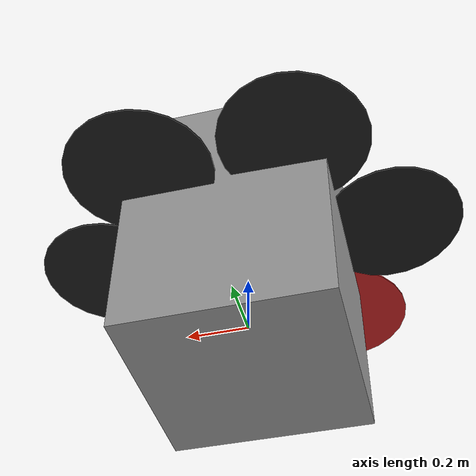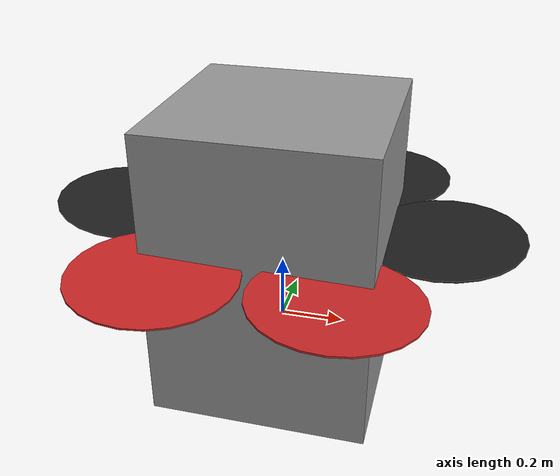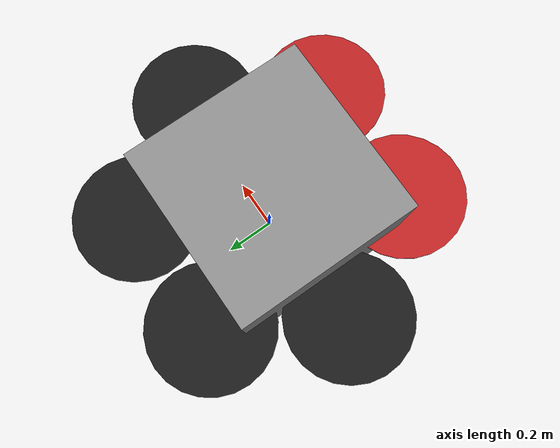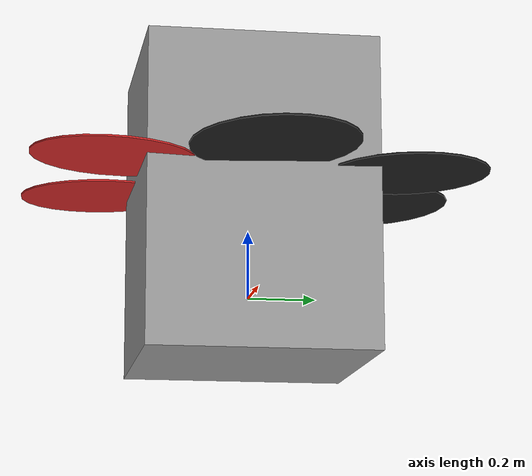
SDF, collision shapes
<sdf version='1.6'>
    <model name='m950_v6_v5'>
        <pose>0 0 0.26 0 0 3.1415927</pose>
        <link name='base_link'>
            <pose frame=''>0 0 0 0 -0 0</pose>
            <inertial>
                <pose frame=''>0.001005 0.001 -0.05066 0 -0 0</pose>
                <mass>9.35</mass>
                <inertia>
                    <ixx>0.38285</ixx>
                    <ixy>-0.00024708</ixy>
                    <ixz>-0.00099873</ixz>
                    <iyy>0.39139</iyy>
                    <iyz>-0.0088356</iyz>
                    <izz>0.30493</izz>
                </inertia>
            </inertial>
            <collision name='base_link_collision'>
                <pose frame=''>0 0 0 0 -0 0</pose>
                <geometry>
                    <box>
                        <size>0.67 0.67 0.915</size>
                    </box>
                </geometry>
                <surface>
                    <contact>
                        <ode>
                            <min_depth>0.001</min_depth>
                            <max_vel>0</max_vel>
                        </ode>
                    </contact>
                    <friction>
                        <ode/>
                    </friction>
                </surface>
            </collision>
            <visual name='base_link_visual'>
                <pose frame=''>0 0 0 0 -0 0</pose>
                <geometry>
                    <mesh>
                        <scale>1 1 1</scale>
                        <uri>model://m950_v6_v5/meshes/base_link.STL</uri>
                    </mesh>
                </geometry>
                <material>
                    <script>
                        <name>Gazebo/Grey</name>
                        <uri>file://media/materials/scripts/gazebo.material</uri>
                    </script>
                </material>
            </visual>
            <gravity>1</gravity>
            <velocity_decay/>
        </link>
        <link name='propeller1_link'>
            <pose frame=''>0.49412 0 0.075945 0.10729 0.005753 2.5331</pose>
            <inertial>
                <pose frame=''>0.001109 0.000962 0.016803 0 -0 0</pose>
                <mass>0.059112</mass>
                <inertia>
                    <ixx>0</ixx>
                    <ixy>0</ixy>
                    <ixz>0</ixz>
                    <iyy>0</iyy>
                    <iyz>0</iyz>
                    <izz>0</izz>
                </inertia>
            </inertial>
            <collision name='propeller1_link_collision'>
                <pose frame=''>0 0 0.015 -0.15 0.08 0</pose>
                <geometry>
                    <cylinder>
                        <length>0.005</length>
                        <radius>0.24</radius>
                    </cylinder>
                </geometry>
                <surface>
                    <contact>
                        <ode/>
                    </contact>
                    <friction>
                        <ode/>
                    </friction>
                </surface>
            </collision>
            <visual name='propeller1_link_visual'>
                <pose frame=''>0 0 0 0 -0 0</pose>
                <geometry>
                    <mesh>
                        <scale>1 1 1</scale>
                        <uri>model://m950_v6_v5/meshes/propeller1_link.STL</uri>
                    </mesh>
                </geometry>
                <material>
                    <script>
                        <name>Gazebo/Black</name>
                        <uri>file://media/materials/scripts/gazebo.material</uri>
                    </script>
                </material>
            </visual>
            <gravity>1</gravity>
            <velocity_decay/>
        </link>
        <joint name='propeller1_joint' type='revolute'>
            <child>propeller1_link</child>
            <parent>base_link</parent>
            <axis>
                <xyz>0.046 0.0827 1.8977</xyz>
                <limit>
                    <lower>0</lower>
                    <upper>0</upper>
                    <effort>0</effort>
                    <velocity>0</velocity>
                </limit>
                <dynamics>
                    <spring_reference>0</spring_reference>
                    <spring_stiffness>0</spring_stiffness>
                </dynamics>
                <use_parent_model_frame>1</use_parent_model_frame>
            </axis>
        </joint>
        <link name='propeller2_link'>
            <pose frame=''>-0.49777 0 0.034181 0.096677 0.012082 0.46711</pose>
            <inertial>
                <pose frame=''>0.003865 0.003359 0.058568 0 -0 0</pose>
                <mass>0.059107</mass>
                <inertia>
                    <ixx>0</ixx>
                    <ixy>0</ixy>
                    <ixz>0</ixz>
                    <iyy>0</iyy>
                    <iyz>0</iyz>
                    <izz>0</izz>
                </inertia>
            </inertial>
            <collision name='propeller2_link_collision'>
                <pose frame=''>0 0 0.051 -0.1 0.05 0</pose>
                <geometry>
                    <cylinder>
                        <length>0.005</length>
                        <radius>0.24</radius>
                    </cylinder>
                </geometry>
                <surface>
                    <contact>
                        <ode/>
                    </contact>
                    <friction>
                        <ode/>
                    </friction>
                </surface>
            </collision>
            <visual name='propeller2_link_visual'>
                <pose frame=''>0 0 0 0 -0 0</pose>
                <geometry>
                    <mesh>
                        <scale>1 1 1</scale>
                        <uri>model://m950_v6_v5/meshes/propeller2_link.STL</uri>
                    </mesh>
                </geometry>
                <material>
                    <script>
                        <name>Gazebo/Black</name>
                        <uri>file://media/materials/scripts/gazebo.material</uri>
                    </script>
                </material>
            </visual>
            <gravity>1</gravity>
            <velocity_decay/>
        </link>
        <joint name='propeller2_joint' type='revolute'>
            <child>propeller2_link</child>
            <parent>base_link</parent>
            <axis>
                <xyz>0.0486 0.0811 1.8976</xyz>

                <limit>
                    <lower>0</lower>
                    <upper>0</upper>
                    <effort>0</effort>
                    <velocity>0</velocity>
                </limit>
                <dynamics>
                    <spring_reference>0</spring_reference>
                    <spring_stiffness>0</spring_stiffness>
                </dynamics>
                <use_parent_model_frame>1</use_parent_model_frame>
            </axis>
        </joint>
        <link name='propeller3_link'>
            <pose frame=''>-0.24933 0.43185 0.024103 0.13681 -0.029569 0.093499</pose>
            <inertial>
                <pose frame=''>0.004529 0.003939 0.068645 0 -0 0</pose>
                <mass>0.059107</mass>
                <inertia>
                    <ixx>0</ixx>
                    <ixy>0</ixy>
                    <ixz>0</ixz>
                    <iyy>0</iyy>
                    <iyz>0</iyz>
                    <izz>0</izz>
                </inertia>
            </inertial>
            <collision name='propeller3_link_collision'>
                <pose frame=''>0 0 0.07 -0.1 -0 0</pose>
                <geometry>
                    <cylinder>
                        <length>0.005</length>
                        <radius>0.24</radius>
                    </cylinder>
                </geometry>
                <surface>
                    <contact>
                        <ode/>
                    </contact>
                    <friction>
                        <ode/>
                    </friction>
                </surface>
            </collision>
            <visual name='propeller3_link_visual'>
                <pose frame=''>0 0 0 0 -0 0</pose>
                <geometry>
                    <mesh>
                        <scale>1 1 1</scale>
                        <uri>model://m950_v6_v5/meshes/propeller3_link.STL</uri>
                    </mesh>
                </geometry>
                <material>
                    <script>
                        <name>Gazebo/Red</name>
                        <uri>file://media/materials/scripts/gazebo.material</uri>
                    </script>
                </material>
            </visual>
            <gravity>1</gravity>
            <velocity_decay/>
        </link>
        <joint name='propeller3_joint' type='revolute'>
            <child>propeller3_link</child>
            <parent>base_link</parent>
            <axis>
                <xyz>0.043578 -0.07548 0.99619</xyz>
                <limit>
                    <lower>0</lower>
                    <upper>0</upper>
                    <effort>0</effort>
                    <velocity>0</velocity>
                </limit>
                <dynamics>
                    <spring_reference>0</spring_reference>
                    <spring_stiffness>0</spring_stiffness>
                </dynamics>
                <use_parent_model_frame>1</use_parent_model_frame>
            </axis>
        </joint>
        <link name='propeller4_link'>
            <pose frame=''>0.248361 -0.425376 0.0755 3.11418 0.044502 0.274574</pose>
            <inertial>
                <pose frame=''>-0.000516 -0.000447 -0.007809 0 -0 0</pose>
                <mass>0.059108</mass>
                <inertia>
                    <ixx>0</ixx>
                    <ixy>0</ixy>
                    <ixz>0</ixz>
                    <iyy>0</iyy>
                    <iyz>0</iyz>
                    <izz>0</izz>
                </inertia>
            </inertial>
            <collision name='propeller4_link_collision'>
                <pose frame=''>0 0 -0.018 -0.01 -0 0</pose>
                <geometry>
                    <cylinder>
                        <length>0.005</length>
                        <radius>0.24</radius>
                    </cylinder>
                </geometry>
                <surface>
                    <contact>
                        <ode/>
                    </contact>
                    <friction>
                        <ode/>
                    </friction>
                </surface>
            </collision>
            <visual name='propeller4_link_visual'>
                <pose frame=''>0 0 0 0 -0 0</pose>
                <geometry>
                    <mesh>
                        <scale>1 1 1</scale>
                        <uri>model://m950_v6_v5/meshes/propeller6_link.STL</uri>
                    </mesh>
                </geometry>
                <material>
                    <script>
                        <name>Gazebo/Black</name>
                        <uri>file://media/materials/scripts/gazebo.material</uri>
                    </script>
                </material>
            </visual>
            <gravity>1</gravity>
            <velocity_decay/>
        </link>
        <joint name='propeller4_joint' type='revolute'>
            <child>propeller4_link</child>
            <parent>base_link</parent>
            <axis>
                <xyz>-0.043578 0.075479 0.99619</xyz>
                <limit>
                    <lower>0</lower>
                    <upper>0</upper>
                    <effort>0</effort>
                    <velocity>0</velocity>
                </limit>
                <dynamics>
                    <spring_reference>0</spring_reference>
                    <spring_stiffness>0</spring_stiffness>
                </dynamics>
                <use_parent_model_frame>1</use_parent_model_frame>
            </axis>
        </joint>
        <link name='propeller5_link'>
            <pose frame=''>0.24845 0.43034 0.044031 -0.02824 -0.084094 2.4104</pose>
            <inertial>
                <pose frame=''>0.003216 0.002795 0.048717 0 -0 0</pose>
                <mass>0.059108</mass>
                <inertia>
                    <ixx>0</ixx>
                    <ixy>0</ixy>
                    <ixz>0</ixz>
                    <iyy>0</iyy>
                    <iyz>0</iyz>
                    <izz>0</izz>
                </inertia>
            </inertial>
            <collision name='propeller5_link_collision'>
                <pose frame=''>0 0 0.051 0.02 0.12 0</pose>
                <geometry>
                    <cylinder>
                        <length>0.005</length>
                        <radius>0.24</radius>
                    </cylinder>
                </geometry>
                <surface>
                    <contact>
                        <ode/>
                    </contact>
                    <friction>
                        <ode/>
                    </friction>
                </surface>
            </collision>
            <visual name='propeller5_link_visual'>
                <pose frame=''>0 0 0 0 -0 0</pose>
                <geometry>
                    <mesh>
                        <scale>1 1 1</scale>
                        <uri>model://m950_v6_v5/meshes/propeller5_link.STL</uri>
                    </mesh>
                </geometry>
                <material>
                    <script>
                        <name>Gazebo/Red</name>
                        <uri>file://media/materials/scripts/gazebo.material</uri>
                    </script>
                </material>
            </visual>
            <gravity>1</gravity>
            <velocity_decay/>
        </link>
        <joint name='propeller5_joint' type='revolute'>
            <child>propeller5_link</child>
            <parent>base_link</parent>
            <axis>
                <xyz>-0.04358 -0.075478 0.99619</xyz>
                <limit>
                    <lower>0</lower>
                    <upper>0</upper>
                    <effort>0</effort>
                    <velocity>0</velocity>
                </limit>
                <dynamics>
                    <spring_reference>0</spring_reference>
                    <spring_stiffness>0</spring_stiffness>
                </dynamics>
                <use_parent_model_frame>1</use_parent_model_frame>
            </axis>
        </joint>
        <link name='propeller6_link'>
            <pose frame=''>-0.24823 -0.42995 0.049081 3.12 0.10364 -0.079043</pose>
            <inertial>
                <pose frame=''>-0.002622 0.001988 -0.017764 0 -0 0</pose>
                <mass>0.059108</mass>
                <inertia>
                    <ixx>0</ixx>
                    <ixy>0</ixy>
                    <ixz>0</ixz>
                    <iyy>0</iyy>
                    <iyz>0</iyz>
                    <izz>0</izz>
                </inertia>
            </inertial>
            <collision name='propeller6_link_collision'>
                <pose frame=''>0 0 -0.025 0.0 0.1 0</pose>
                <geometry>
                    <cylinder>
                        <length>0.005</length>
                        <radius>0.24</radius>
                    </cylinder>
                </geometry>
                <surface>
                    <contact>
                        <ode/>
                    </contact>
                    <friction>
                        <ode/>
                    </friction>
                </surface>
            </collision>
            <visual name='propeller6_link_visual'>
                <pose frame=''>0 0 0 0 -0 0</pose>
                <geometry>
                    <mesh>
                        <scale>1 1 1</scale>
                        <uri>model://m950_v6_v5/meshes/propeller6_link.STL</uri>
                    </mesh>
                </geometry>
                <material>
                    <script>
                        <name>Gazebo/Black</name>
                        <uri>file://media/materials/scripts/gazebo.material</uri>
                    </script>
                </material>
            </visual>
            <gravity>1</gravity>
            <velocity_decay/>
        </link>
        <joint name='propeller6_joint' type='revolute'>
            <child>propeller6_link</child>
            <parent>base_link</parent>
            <axis>
                <xyz>0.04358 0.075469 0.996191</xyz>
                <limit>
                    <lower>0</lower>
                    <upper>0</upper>
                    <effort>0</effort>
                    <velocity>0</velocity>
                </limit>
                <dynamics>
                    <spring_reference>0</spring_reference>
                    <spring_stiffness>0</spring_stiffness>
                </dynamics>
                <use_parent_model_frame>1</use_parent_model_frame>
            </axis>
        </joint>

        <link name='imu_link'>
            <pose frame=''>0 0 0 0 0 3.1415927</pose>
            <inertial>
                <pose frame=''>0 0 0 0 -0 0</pose>
                <mass>0.015</mass>
                <inertia>
                    <ixx>1e-05</ixx>
                    <ixy>0</ixy>
                    <ixz>0</ixz>
                    <iyy>1e-05</iyy>
                    <iyz>0</iyz>
                    <izz>1e-05</izz>
                </inertia>
            </inertial>
        </link>
        <joint name='imu_joint' type='revolute'>
            <child>imu_link</child>
            <parent>base_link</parent>
            <axis>
                <xyz>1 0 0</xyz>
                <limit>
                    <lower>0</lower>
                    <upper>0</upper>
                    <effort>0</effort>
                    <velocity>0</velocity>
                </limit>
                <dynamics>
                    <spring_reference>0</spring_reference>
                    <spring_stiffness>0</spring_stiffness>
                </dynamics>
                <use_parent_model_frame>1</use_parent_model_frame>
            </axis>
        </joint>

        <plugin name='rosbag' filename='librotors_gazebo_multirotor_base_plugin.so'>
            <robotNamespace></robotNamespace>
            <linkName>base_link</linkName>
            <rotorVelocitySlowdownSim>10</rotorVelocitySlowdownSim>
        </plugin>
        <plugin name='front_right_motor_model' filename='librotors_gazebo_motor_model.so'>
            <robotNamespace></robotNamespace>
            <jointName>propeller1_joint</jointName>
            <linkName>propeller1_link</linkName>
            <turningDirection>ccw</turningDirection>
            <timeConstantUp>0.0125</timeConstantUp>
            <timeConstantDown>0.025</timeConstantDown>
            <maxRotVelocity>1500</maxRotVelocity>
            <motorConstant>8.54858e-06</motorConstant>
            <momentConstant>0.06</momentConstant>
            <commandSubTopic>/gazebo/command/motor_speed</commandSubTopic>
            <motorNumber>4</motorNumber>
            <rotorDragCoefficient>0.000806428</rotorDragCoefficient>
            <rollingMomentCoefficient>1e-06</rollingMomentCoefficient>
            <motorSpeedPubTopic>/motor_speed/4</motorSpeedPubTopic>
            <rotorVelocitySlowdownSim>10</rotorVelocitySlowdownSim>
        </plugin>
        <plugin name='back_left_motor_model' filename='librotors_gazebo_motor_model.so'>
            <robotNamespace></robotNamespace>
            <jointName>propeller1_joint</jointName>
            <linkName>propeller1_link</linkName>
            <turningDirection>cw</turningDirection>
            <timeConstantUp>0.0125</timeConstantUp>
            <timeConstantDown>0.025</timeConstantDown>
            <maxRotVelocity>1500</maxRotVelocity>
            <motorConstant>8.54858e-06</motorConstant>
            <momentConstant>0.06</momentConstant>
            <commandSubTopic>/gazebo/command/motor_speed</commandSubTopic>
            <motorNumber>1</motorNumber>
            <rotorDragCoefficient>0.000806428</rotorDragCoefficient>
            <rollingMomentCoefficient>1e-06</rollingMomentCoefficient>
            <motorSpeedPubTopic>/motor_speed/1</motorSpeedPubTopic>
            <rotorVelocitySlowdownSim>10</rotorVelocitySlowdownSim>
        </plugin>

            <!--&lt;!&ndash;-->
            <!--&ndash;&gt;-->
            <!--&lt;!&ndash;-->
            <!--&ndash;&gt;-->
        <plugin name='mavlink_interface' filename='librotors_gazebo_mavlink_interface.so'>
            <robotNamespace></robotNamespace>
            <imuSubTopic>/imu</imuSubTopic>
            <motorSpeedCommandPubTopic>/gazebo/command/motor_speed</motorSpeedCommandPubTopic>

            <control_channels>
                <channel name="rotor0">
                    <input_index>1</input_index>
                    <input_offset>0</input_offset>
                    <input_scaling>1500</input_scaling>
                    <zero_position_disarmed>0</zero_position_disarmed>
                    <zero_position_armed>100</zero_position_armed>
                    <joint_control_type>velocity</joint_control_type>
                    <joint_name>propeller1_joint</joint_name>
                </channel>
            </control_channels>
        </plugin>
        <static>0</static>
        <plugin name='rotors_gazebo_imu_plugin' filename='librotors_gazebo_imu_plugin.so'>
            <robotNamespace></robotNamespace>
            <linkName>imu_link</linkName>
            <imuTopic>/imu</imuTopic>
            <gyroscopeNoiseDensity>0.0003394</gyroscopeNoiseDensity>
            <gyroscopeRandomWalk>3.8785e-05</gyroscopeRandomWalk>
            <gyroscopeBiasCorrelationTime>1000.0</gyroscopeBiasCorrelationTime>
            <gyroscopeTurnOnBiasSigma>0.0087</gyroscopeTurnOnBiasSigma>
            <accelerometerNoiseDensity>0.004</accelerometerNoiseDensity>
            <accelerometerRandomWalk>0.006</accelerometerRandomWalk>
            <accelerometerBiasCorrelationTime>300.0</accelerometerBiasCorrelationTime>
            <accelerometerTurnOnBiasSigma>0.196</accelerometerTurnOnBiasSigma>
        </plugin>
    </model>
</sdf>
